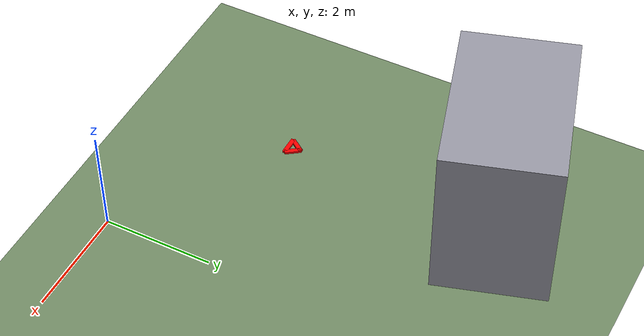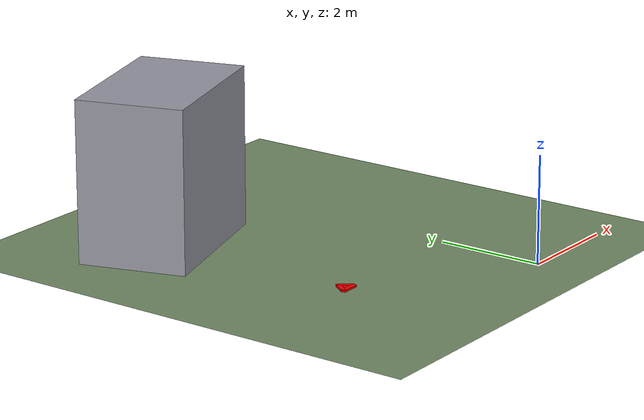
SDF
<sdf version="1.8">
 <world name="lmm_world">
  <model name="ground_plane">
   <static>true</static>
   <link name="link">
    <collision name="collision"><geometry><plane><normal>0 0 1</normal></plane></geometry></collision>
    <visual name="visual">
     <geometry><plane><normal>0 0 1</normal><size>100 100</size></plane></geometry>
     <material><ambient>0.4 0.5 0.35 1</ambient><diffuse>0.45 0.55 0.4 1</diffuse></material>
    </visual>
   </link>
  </model>
  <model name="building2">
   <static>true</static>
   <pose>-3 6 1.5 0 0 0.3</pose>
   <link name="link">
    <visual name="v">
     <geometry><box><size>3 2 3</size></box></geometry>
     <material><ambient>0.5 0.5 0.55 1</ambient><diffuse>0.6 0.6 0.65 1</diffuse></material>
    </visual>
    <collision name="c"><geometry><box><size>3 2 3</size></box></geometry></collision>
   </link>
  </model>
  <model name="red_triangle">
   <pose>-3 2 0.025 0 0 0</pose>
   <link name="link">
    <inertial>
     <mass>0.05</mass>
     <inertia><ixx>0.0001</ixx><ixy>0</ixy><ixz>0</ixz><iyy>0.0001</iyy><iyz>0</iyz><izz>0.0001</izz></inertia>
    </inertial>
    <visual name="bottom_visual">
     <pose>0 -0.075 0 0 0 0</pose>
     <geometry><box><size>0.34 0.08 0.04</size></box></geometry>
     <material><ambient>1.0 0.0 0.0 1</ambient><diffuse>1.0 0.0 0.0 1</diffuse></material>
    </visual>
    <collision name="bottom_collision">
     <pose>0 -0.075 0 0 0 0</pose>
     <geometry><box><size>0.34 0.08 0.04</size></box></geometry>
    </collision>
    <visual name="left_visual">
     <pose>-0.075 0.045 0 0 0 0.95</pose>
     <geometry><box><size>0.30 0.08 0.04</size></box></geometry>
     <material><ambient>1.0 0.0 0.0 1</ambient><diffuse>1.0 0.0 0.0 1</diffuse></material>
    </visual>
    <collision name="left_collision">
     <pose>-0.075 0.045 0 0 0 0.95</pose>
     <geometry><box><size>0.30 0.08 0.04</size></box></geometry>
    </collision>
    <visual name="right_visual">
     <pose>0.075 0.045 0 0 0 -0.95</pose>
     <geometry><box><size>0.30 0.08 0.04</size></box></geometry>
     <material><ambient>1.0 0.0 0.0 1</ambient><diffuse>1.0 0.0 0.0 1</diffuse></material>
    </visual>
    <collision name="right_collision">
     <pose>0.075 0.045 0 0 0 -0.95</pose>
     <geometry><box><size>0.30 0.08 0.04</size></box></geometry>
    </collision>
   </link>
  </model>
 </world>
</sdf>
